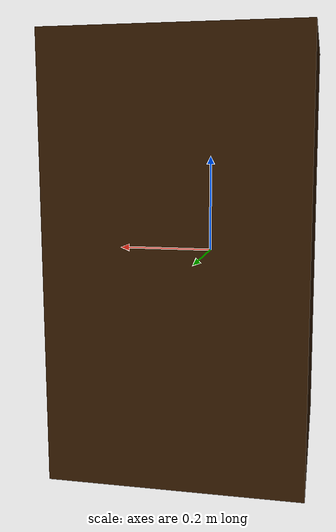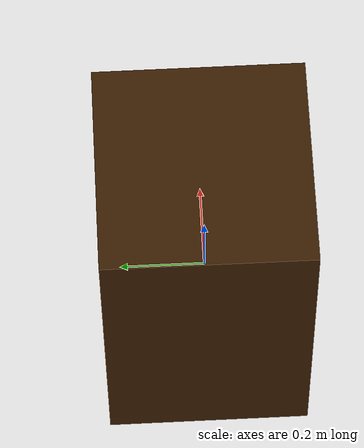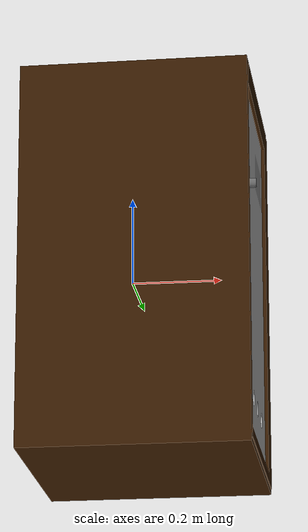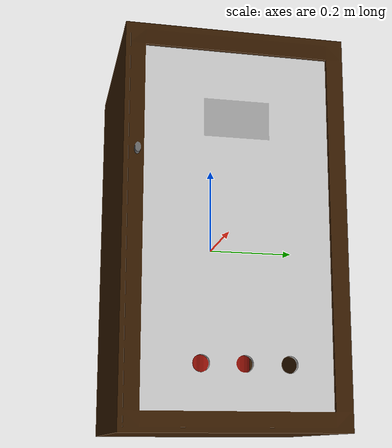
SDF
<?xml version='1.0'?>
<sdf version='1.5'>
    <model name="fire_rescue_box">
        <pose>0 0 0 0 0 0</pose>
        <static>false</static>
        <link name='model_body'>
            <visual name="visual">
                <geometry>
                    <mesh>
                        <uri>model://robert_gazebo/meshes/fire_rescue_box_visual.dae</uri>
                        <scale>1 1 1</scale>
                    </mesh>
                </geometry>
            </visual>

            <collision name="collision">
                <geometry>
                    <mesh>
                        <uri>model://robert_gazebo/meshes/fire_rescue_box_collision.dae</uri>
                        <scale>1 1 1</scale>
                    </mesh>
                </geometry>
            </collision>
            <inertial>
                <pose>0 0 0 0 0 0</pose>
                <inertia>
                    <ixx>1.8</ixx>
                    <ixy>0</ixy>
                    <ixz>0</ixz>
                    <iyy>1.53</iyy>
                    <iyz>0</iyz>
                    <izz>0.45</izz>
                </inertia>
                <mass>12.0</mass>
            </inertial>
        </link>
    </model>
</sdf>
